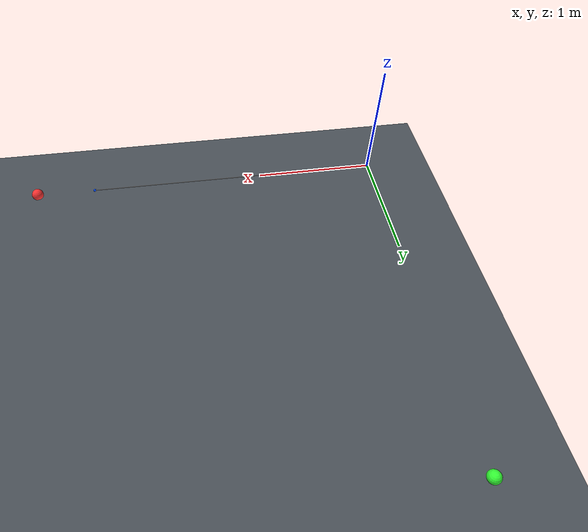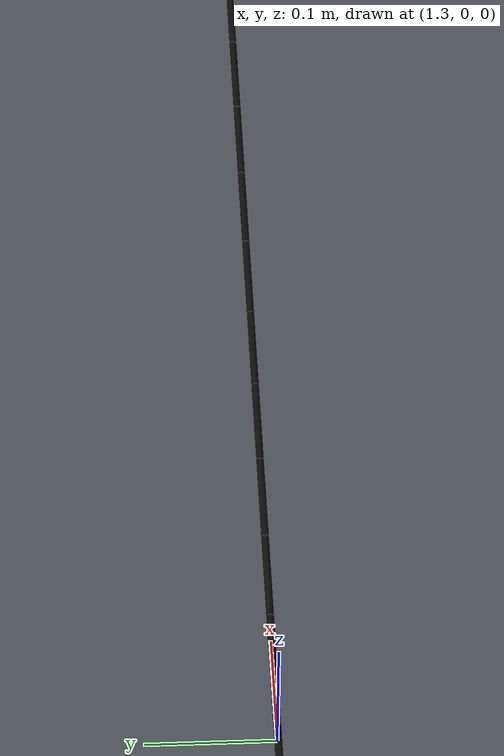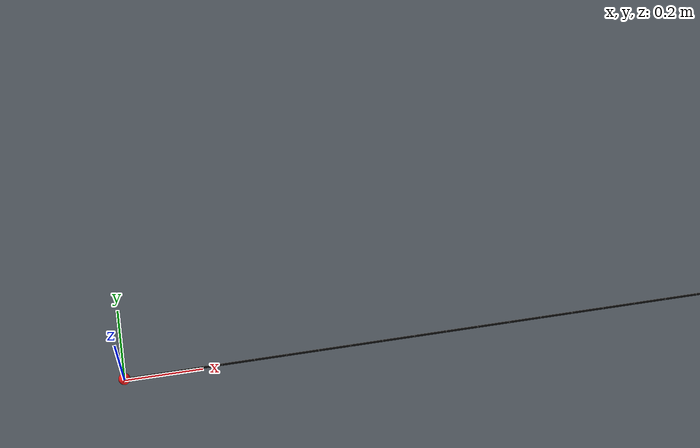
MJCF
<?xml version='1.0' encoding='utf-8'?>
<mujoco model="tether_static_n30">
  <compiler angle="radian" coordinate="local" />
  <option timestep="0.001" gravity="0 0 -9.80665" integrator="RK4" density="1.2" viscosity="0" />
  <default>
    <geom contype="1" conaffinity="1" condim="3" friction="1.0 0.05 0.05" />
    <site type="sphere" size="0.008" rgba="1 0 0 1" />
  </default>
  <visual>
    <headlight ambient="0.4 0.4 0.4" />
    <global offwidth="1280" offheight="720" />
  </visual>
  <asset>
    <texture name="grid" type="2d" builtin="checker" rgb1="0.25 0.28 0.30" rgb2="0.32 0.35 0.38" width="512" height="512" />
    <material name="grid" texture="grid" texrepeat="12 12" reflectance="0.05" />
  </asset>
  <worldbody>
    <light pos="0 0 6" dir="0 0 -1" diffuse="0.8 0.8 0.8" />
    <geom name="floor" type="plane" size="60 60 0.1" material="grid" pos="0 0 0" />
    <site name="east_marker" pos="3 0 0.02" size="0.05" rgba="1 0.2 0.2 1" />
    <site name="north_marker" pos="0 3 0.02" size="0.05" rgba="0.2 1 0.2 1" />
    <body name="tether_link_1" pos="0 0 0.01">
      <joint name="tether_joint_1" type="ball" damping="0.002" armature="1e-6" />
      <geom name="tether_geom_1" type="capsule" fromto="0 0 0 0.083333333333333329 0 0" size="0.0030000000000000001" mass="0.0050000000000000001" contype="2" conaffinity="1" rgba="0.04 0.04 0.04 1" />
      <body name="tether_link_2" pos="0.083333333333333329 0 0">
        <joint name="tether_joint_2" type="ball" damping="0.002" armature="1e-6" />
        <geom name="tether_geom_2" type="capsule" fromto="0 0 0 0.083333333333333329 0 0" size="0.0030000000000000001" mass="0.0050000000000000001" contype="2" conaffinity="1" rgba="0.04 0.04 0.04 1" />
        <body name="tether_link_3" pos="0.083333333333333329 0 0">
          <joint name="tether_joint_3" type="ball" damping="0.002" armature="1e-6" />
          <geom name="tether_geom_3" type="capsule" fromto="0 0 0 0.083333333333333343 0 0" size="0.0030000000000000001" mass="0.0050000000000000001" contype="2" conaffinity="1" rgba="0.04 0.04 0.04 1" />
          <body name="tether_link_4" pos="0.083333333333333343 0 0">
            <joint name="tether_joint_4" type="ball" damping="0.002" armature="1e-6" />
            <geom name="tether_geom_4" type="capsule" fromto="0 0 0 0.083333333333333315 0 0" size="0.0030000000000000001" mass="0.0050000000000000001" contype="2" conaffinity="1" rgba="0.04 0.04 0.04 1" />
            <body name="tether_link_5" pos="0.083333333333333315 0 0">
              <joint name="tether_joint_5" type="ball" damping="0.002" armature="1e-6" />
              <geom name="tether_geom_5" type="capsule" fromto="0 0 0 0.083333333333333315 0 0" size="0.0030000000000000001" mass="0.0050000000000000001" contype="2" conaffinity="1" rgba="0.04 0.04 0.04 1" />
              <body name="tether_link_6" pos="0.083333333333333315 0 0">
                <joint name="tether_joint_6" type="ball" damping="0.002" armature="1e-6" />
                <geom name="tether_geom_6" type="capsule" fromto="0 0 0 0.08333333333333337 0 0" size="0.0030000000000000001" mass="0.0050000000000000001" contype="2" conaffinity="1" rgba="0.04 0.04 0.04 1" />
                <body name="tether_link_7" pos="0.08333333333333337 0 0">
                  <joint name="tether_joint_7" type="ball" damping="0.002" armature="1e-6" />
                  <geom name="tether_geom_7" type="capsule" fromto="0 0 0 0.083333333333333259 0 0" size="0.0030000000000000001" mass="0.0050000000000000001" contype="2" conaffinity="1" rgba="0.04 0.04 0.04 1" />
                  <body name="tether_link_8" pos="0.083333333333333259 0 0">
                    <joint name="tether_joint_8" type="ball" damping="0.002" armature="1e-6" />
                    <geom name="tether_geom_8" type="capsule" fromto="0 0 0 0.08333333333333337 0 0" size="0.0030000000000000001" mass="0.0050000000000000001" contype="2" conaffinity="1" rgba="0.04 0.04 0.04 1" />
                    <body name="tether_link_9" pos="0.08333333333333337 0 0">
                      <joint name="tether_joint_9" type="ball" damping="0.002" armature="1e-6" />
                      <geom name="tether_geom_9" type="capsule" fromto="0 0 0 0.08333333333333337 0 0" size="0.0030000000000000001" mass="0.0050000000000000001" contype="2" conaffinity="1" rgba="0.04 0.04 0.04 1" />
                      <body name="tether_link_10" pos="0.08333333333333337 0 0">
                        <joint name="tether_joint_10" type="ball" damping="0.002" armature="1e-6" />
                        <geom name="tether_geom_10" type="capsule" fromto="0 0 0 0.083333333333333259 0 0" size="0.0030000000000000001" mass="0.0050000000000000001" contype="2" conaffinity="1" rgba="0.04 0.04 0.04 1" />
                        <body name="tether_link_11" pos="0.083333333333333259 0 0">
                          <joint name="tether_joint_11" type="ball" damping="0.002" armature="1e-6" />
                          <geom name="tether_geom_11" type="capsule" fromto="0 0 0 0.08333333333333337 0 0" size="0.0030000000000000001" mass="0.0050000000000000001" contype="2" conaffinity="1" rgba="0.04 0.04 0.04 1" />
                          <body name="tether_link_12" pos="0.08333333333333337 0 0">
                            <joint name="tether_joint_12" type="ball" damping="0.002" armature="1e-6" />
                            <geom name="tether_geom_12" type="capsule" fromto="0 0 0 0.08333333333333337 0 0" size="0.0030000000000000001" mass="0.0050000000000000001" contype="2" conaffinity="1" rgba="0.04 0.04 0.04 1" />
                            <body name="tether_link_13" pos="0.08333333333333337 0 0">
                              <joint name="tether_joint_13" type="ball" damping="0.002" armature="1e-6" />
                              <geom name="tether_geom_13" type="capsule" fromto="0 0 0 0.083333333333333259 0 0" size="0.0030000000000000001" mass="0.0050000000000000001" contype="2" conaffinity="1" rgba="0.04 0.04 0.04 1" />
                              <body name="tether_link_14" pos="0.083333333333333259 0 0">
                                <joint name="tether_joint_14" type="ball" damping="0.002" armature="1e-6" />
                                <geom name="tether_geom_14" type="capsule" fromto="0 0 0 0.083333333333333259 0 0" size="0.0030000000000000001" mass="0.0050000000000000001" contype="2" conaffinity="1" rgba="0.04 0.04 0.04 1" />
                                <body name="tether_link_15" pos="0.083333333333333259 0 0">
                                  <joint name="tether_joint_15" type="ball" damping="0.002" armature="1e-6" />
                                  <geom name="tether_geom_15" type="capsule" fromto="0 0 0 0.083333333333333481 0 0" size="0.0030000000000000001" mass="0.0050000000000000001" contype="2" conaffinity="1" rgba="0.04 0.04 0.04 1" />
                                  <body name="tether_link_16" pos="0.083333333333333481 0 0">
                                    <joint name="tether_joint_16" type="ball" damping="0.002" armature="1e-6" />
                                    <geom name="tether_geom_16" type="capsule" fromto="0 0 0 0.083333333333333259 0 0" size="0.0030000000000000001" mass="0.0050000000000000001" contype="2" conaffinity="1" rgba="0.04 0.04 0.04 1" />
                                    <body name="tether_link_17" pos="0.083333333333333259 0 0">
                                      <joint name="tether_joint_17" type="ball" damping="0.002" armature="1e-6" />
                                      <geom name="tether_geom_17" type="capsule" fromto="0 0 0 0.083333333333333259 0 0" size="0.0030000000000000001" mass="0.0050000000000000001" contype="2" conaffinity="1" rgba="0.04 0.04 0.04 1" />
                                      <body name="tether_link_18" pos="0.083333333333333259 0 0">
                                        <joint name="tether_joint_18" type="ball" damping="0.002" armature="1e-6" />
                                        <geom name="tether_geom_18" type="capsule" fromto="0 0 0 0.083333333333333481 0 0" size="0.0030000000000000001" mass="0.0050000000000000001" contype="2" conaffinity="1" rgba="0.04 0.04 0.04 1" />
                                        <body name="tether_link_19" pos="0.083333333333333481 0 0">
                                          <joint name="tether_joint_19" type="ball" damping="0.002" armature="1e-6" />
                                          <geom name="tether_geom_19" type="capsule" fromto="0 0 0 0.083333333333333259 0 0" size="0.0030000000000000001" mass="0.0050000000000000001" contype="2" conaffinity="1" rgba="0.04 0.04 0.04 1" />
                                          <body name="tether_link_20" pos="0.083333333333333259 0 0">
                                            <joint name="tether_joint_20" type="ball" damping="0.002" armature="1e-6" />
                                            <geom name="tether_geom_20" type="capsule" fromto="0 0 0 0.083333333333333259 0 0" size="0.0030000000000000001" mass="0.0050000000000000001" contype="2" conaffinity="1" rgba="0.04 0.04 0.04 1" />
                                            <body name="tether_link_21" pos="0.083333333333333259 0 0">
                                              <joint name="tether_joint_21" type="ball" damping="0.002" armature="1e-6" />
                                              <geom name="tether_geom_21" type="capsule" fromto="0 0 0 0.083333333333333481 0 0" size="0.0030000000000000001" mass="0.0050000000000000001" contype="2" conaffinity="1" rgba="0.04 0.04 0.04 1" />
                                              <body name="tether_link_22" pos="0.083333333333333481 0 0">
                                                <joint name="tether_joint_22" type="ball" damping="0.002" armature="1e-6" />
                                                <geom name="tether_geom_22" type="capsule" fromto="0 0 0 0.083333333333333259 0 0" size="0.0030000000000000001" mass="0.0050000000000000001" contype="2" conaffinity="1" rgba="0.04 0.04 0.04 1" />
                                                <body name="tether_link_23" pos="0.083333333333333259 0 0">
                                                  <joint name="tether_joint_23" type="ball" damping="0.002" armature="1e-6" />
                                                  <geom name="tether_geom_23" type="capsule" fromto="0 0 0 0.083333333333333259 0 0" size="0.0030000000000000001" mass="0.0050000000000000001" contype="2" conaffinity="1" rgba="0.04 0.04 0.04 1" />
                                                  <body name="tether_link_24" pos="0.083333333333333259 0 0">
                                                    <joint name="tether_joint_24" type="ball" damping="0.002" armature="1e-6" />
                                                    <geom name="tether_geom_24" type="capsule" fromto="0 0 0 0.083333333333333481 0 0" size="0.0030000000000000001" mass="0.0050000000000000001" contype="2" conaffinity="1" rgba="0.04 0.04 0.04 1" />
                                                    <body name="tether_link_25" pos="0.083333333333333481 0 0">
                                                      <joint name="tether_joint_25" type="ball" damping="0.002" armature="1e-6" />
                                                      <geom name="tether_geom_25" type="capsule" fromto="0 0 0 0.083333333333333037 0 0" size="0.0030000000000000001" mass="0.0050000000000000001" contype="2" conaffinity="1" rgba="0.04 0.04 0.04 1" />
                                                      <body name="tether_link_26" pos="0.083333333333333037 0 0">
                                                        <joint name="tether_joint_26" type="ball" damping="0.002" armature="1e-6" />
                                                        <geom name="tether_geom_26" type="capsule" fromto="0 0 0 0.083333333333333481 0 0" size="0.0030000000000000001" mass="0.0050000000000000001" contype="2" conaffinity="1" rgba="0.04 0.04 0.04 1" />
                                                        <body name="tether_link_27" pos="0.083333333333333481 0 0">
                                                          <joint name="tether_joint_27" type="ball" damping="0.002" armature="1e-6" />
                                                          <geom name="tether_geom_27" type="capsule" fromto="0 0 0 0.083333333333333481 0 0" size="0.0030000000000000001" mass="0.0050000000000000001" contype="2" conaffinity="1" rgba="0.04 0.04 0.04 1" />
                                                          <body name="tether_link_28" pos="0.083333333333333481 0 0">
                                                            <joint name="tether_joint_28" type="ball" damping="0.002" armature="1e-6" />
                                                            <geom name="tether_geom_28" type="capsule" fromto="0 0 0 0.083333333333333037 0 0" size="0.0030000000000000001" mass="0.0050000000000000001" contype="2" conaffinity="1" rgba="0.04 0.04 0.04 1" />
                                                            <body name="tether_link_29" pos="0.083333333333333037 0 0">
                                                              <joint name="tether_joint_29" type="ball" damping="0.002" armature="1e-6" />
                                                              <geom name="tether_geom_29" type="capsule" fromto="0 0 0 0.083333333333333481 0 0" size="0.0030000000000000001" mass="0.0050000000000000001" contype="2" conaffinity="1" rgba="0.04 0.04 0.04 1" />
                                                              <body name="tether_link_30" pos="0.083333333333333481 0 0">
                                                                <joint name="tether_joint_30" type="ball" damping="0.002" armature="1e-6" />
                                                                <geom name="tether_geom_30" type="capsule" fromto="0 0 0 0.083333333333333481 0 0" size="0.0030000000000000001" mass="0.0050000000000000001" contype="2" conaffinity="1" rgba="0.04 0.04 0.04 1" />
                                                                <site name="tether_endpoint" pos="0.083333333333333481 0 0" size="0.012" rgba="0 0.3 1 1" />
                                                              </body>
                                                            </body>
                                                          </body>
                                                        </body>
                                                      </body>
                                                    </body>
                                                  </body>
                                                </body>
                                              </body>
                                            </body>
                                          </body>
                                        </body>
                                      </body>
                                    </body>
                                  </body>
                                </body>
                              </body>
                            </body>
                          </body>
                        </body>
                      </body>
                    </body>
                  </body>
                </body>
              </body>
            </body>
          </body>
        </body>
      </body>
    </body>
    <site name="tether_anchor" pos="0 0 0.01" size="0.015" rgba="1 0.1 0.1 1" />
  </worldbody>
</mujoco>
